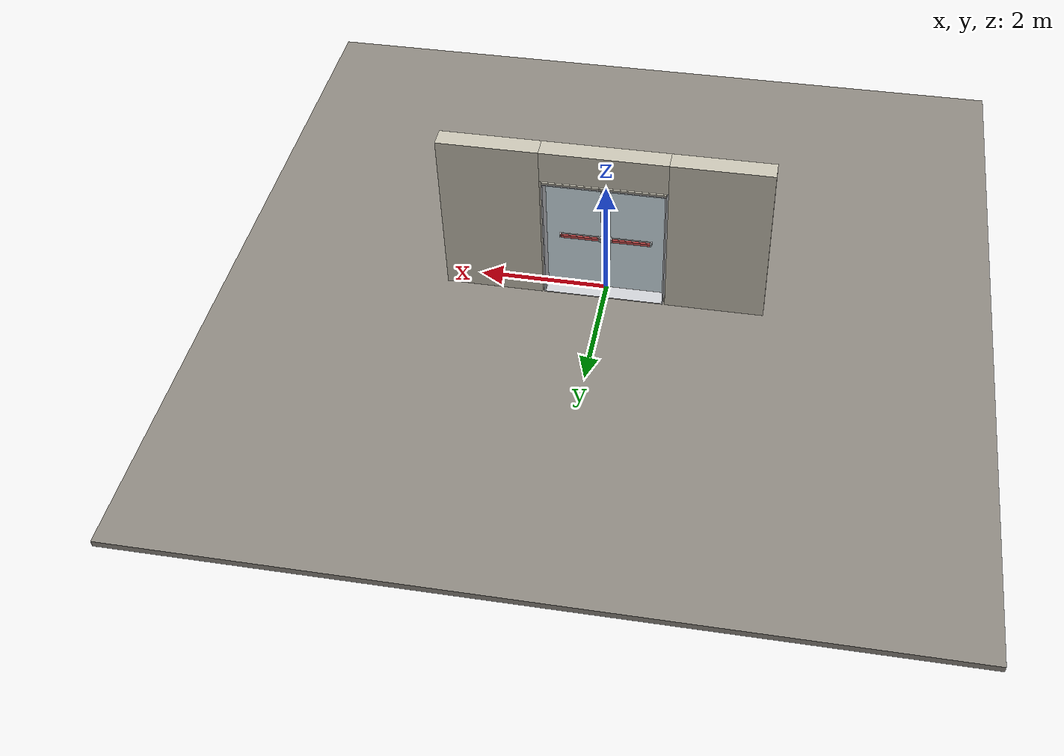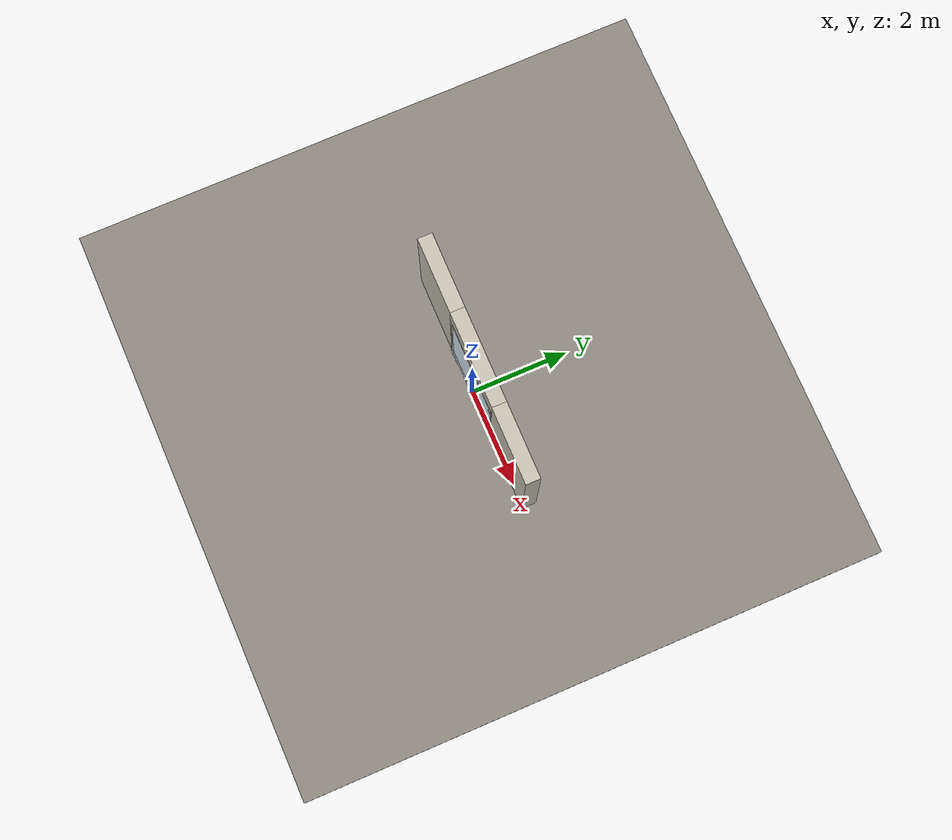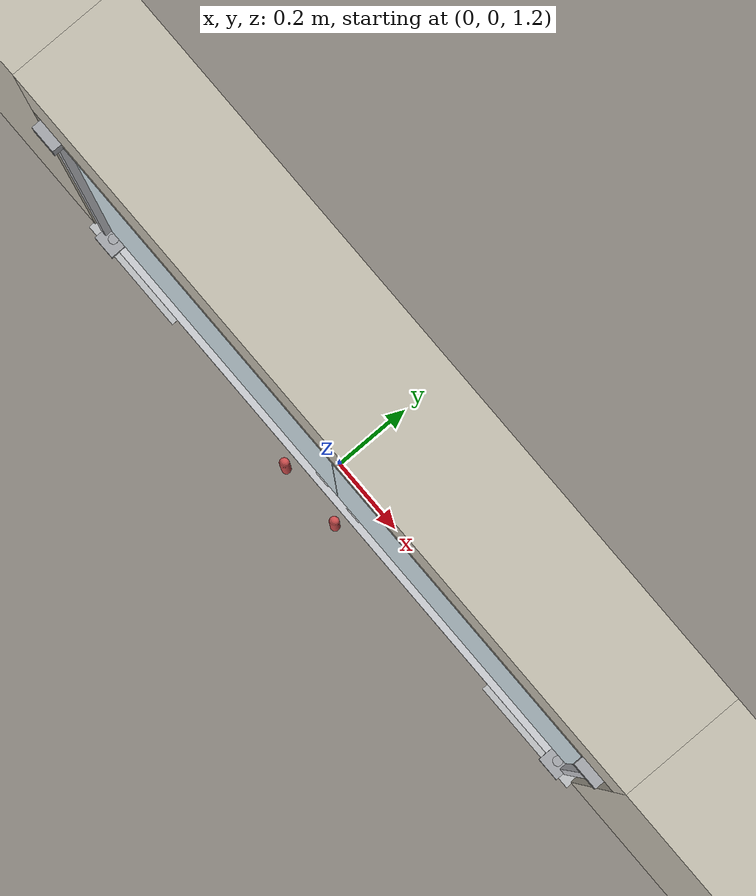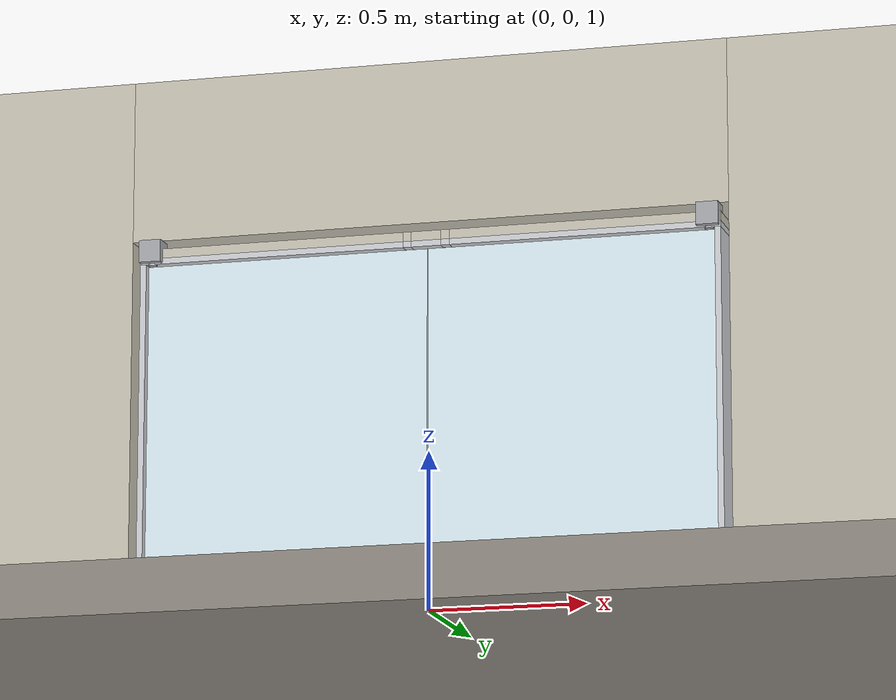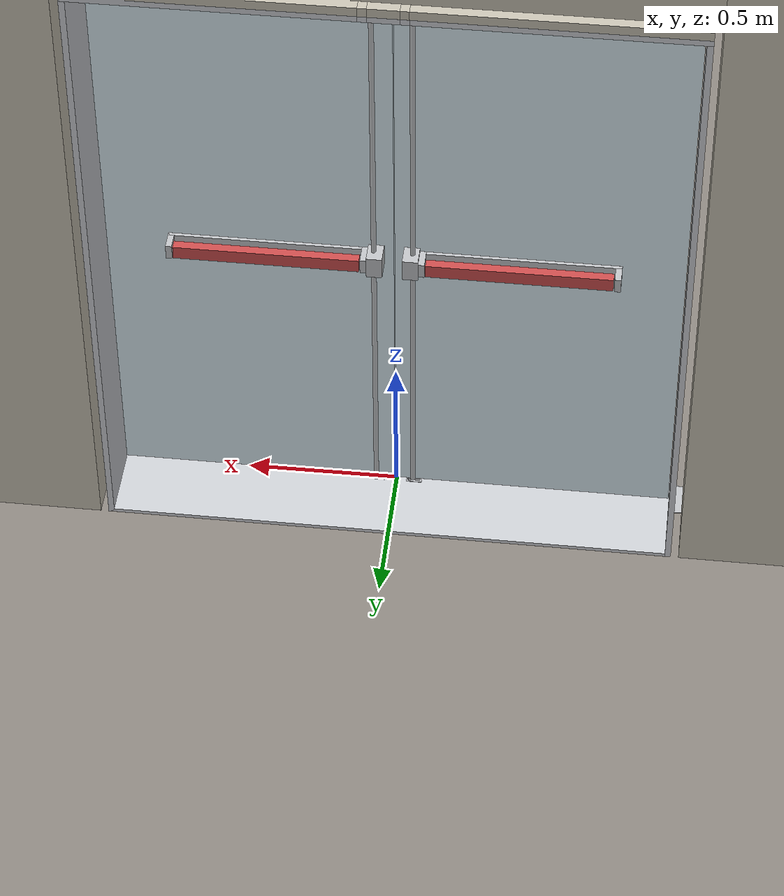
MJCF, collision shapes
<?xml version="1.0" ?>
<mujoco model="db0132_swing_double_full">
  <compiler angle="radian" meshdir="../../hardware" texturedir="../../textures" autolimits="true" inertiafromgeom="false"/>
  <option timestep="0.002" integrator="implicitfast" cone="elliptic" impratio="10" noslip_iterations="3">
    <flag multiccd="enable"/>
  </option>
  <size memory="16M"/>
  <default>
    <geom condim="4" solref="0.005 1" solimp="0.95 0.99 0.001"/>
    <joint solreflimit="0.005 1" solimplimit="0.95 0.99 0.001"/>
    <tendon solreflimit="0.005 1"/>
    <equality solref="0.002 1"/>
  </default>
  <visual>
    <headlight ambient="0.4 0.4 0.4" diffuse="0.7 0.7 0.7" specular="0.2 0.2 0.2"/>
    <quality shadowsize="4096"/>
    <map znear="0.01" zfar="60"/>
  </visual>
  <asset>
    <mesh name="pull_f8d79d6331" file="pull_f8d79d6331.obj"/>
    <mesh name="touchbar_pad_2729a067b4" file="touchbar_pad_2729a067b4.obj"/>
    <material name="mat_floor" rgba="0.55 0.53 0.5 1" specular="0.2" shininess="0.15" reflectance="0"/>
    <material name="mat_wall" rgba="0.78 0.76 0.7 1" specular="0.2" shininess="0.1" reflectance="0"/>
    <material name="mat_leaf_a" rgba="0.85 0.92 0.95 0.25" specular="0.2" shininess="0.95" reflectance="0.1"/>
    <material name="mat_glass_leaf" rgba="0.85 0.92 0.95 0.25" specular="0.2" shininess="0.95" reflectance="0.1"/>
    <material name="mat_patch" rgba="0.75 0.76 0.77 1" specular="0.8" shininess="0.65" reflectance="0.4"/>
    <material name="mat_hinge" rgba="0.65 0.66 0.68 1" specular="0.74" shininess="0.5" reflectance="0.36"/>
    <material name="mat_op_stainless" rgba="0.75 0.76 0.77 1" specular="0.8" shininess="0.65" reflectance="0.4"/>
    <material name="mat_bolt" rgba="0.75 0.76 0.77 1" specular="0.8" shininess="0.65" reflectance="0.4"/>
    <material name="mat_closer" rgba="0.75 0.76 0.77 1" specular="0.8" shininess="0.65" reflectance="0.4"/>
    <material name="mat_leaf_b" rgba="0.85 0.92 0.95 0.25" specular="0.2" shininess="0.95" reflectance="0.1"/>
    <material name="mat_frame" rgba="0.8 0.81 0.83 1" specular="0.8" shininess="0.6" reflectance="0.4"/>
    <material name="mat_threshold" rgba="0.8 0.81 0.83 1" specular="0.8" shininess="0.6" reflectance="0.4"/>
    <texture name="skybox" type="skybox" builtin="gradient" rgb1="0.6 0.7 0.85" rgb2="0.9 0.92 0.95" width="256" height="256"/>
  </asset>
  <worldbody>
    <light name="sun" pos="1.5 -2.5 4" dir="-0.3 0.5 -0.8" directional="true" diffuse="0.8 0.8 0.8" specular="0.3 0.3 0.3" castshadow="true"/>
    <light name="fill" pos="-1.5 2.5 3" dir="0.3 -0.5 -0.7" directional="true" diffuse="0.35 0.35 0.4" castshadow="false"/>
    <camera name="robot_view" pos="0 -2.530312 1.812087" xyaxes="1 0 0 0 0.26963 0.962964" fovy="52"/>
    <camera name="far_view" pos="0 2.745312 1.812087" xyaxes="-1 0 0 0 -0.26963 0.962964" fovy="52"/>
    <camera name="iso" pos="-2.004737 -2.108262 2.234138" xyaxes="0.741536 -0.670913 0 0.242917 0.268487 0.932151" fovy="46"/>
    <camera name="detail_handle" pos="0.0885 -0.8975 1.32" xyaxes="0.97561 0.219512 0 -0.070934 0.315262 0.94635" fovy="38"/>
    <geom name="floor" type="box" size="6 6 0.05" pos="0 0 -0.05" material="mat_floor" group="0" contype="1" conaffinity="1" friction="0.8 0.005 0.0001" density="2400"/>
    <geom name="wall_left" type="box" size="0.76825 0.15 1.3735" pos="-1.73175 0.1075 1.3735" material="mat_wall" group="0" contype="1" conaffinity="1" friction="0.6 0.005 0.0001" density="800"/>
    <geom name="wall_right" type="box" size="0.76825 0.15 1.3735" pos="1.73175 0.1075 1.3735" material="mat_wall" group="0" contype="1" conaffinity="1" friction="0.6 0.005 0.0001" density="800"/>
    <geom name="wall_header" type="box" size="0.9635 0.15 0.2625" pos="0 0.1075 2.4845" material="mat_wall" group="0" contype="1" conaffinity="1" friction="0.6 0.005 0.0001" density="800"/>
    <geom name="pivot_bottom_socket" type="box" size="0.035 0.035 0.0185" pos="-0.8995 -0.0325 0.0085" material="mat_hinge" group="1" contype="0" conaffinity="0" density="7850"/>
    <geom name="pivot_top_bracket" type="box" size="0.035 0.035 0.0355" pos="-0.8995 -0.0325 2.1865" material="mat_hinge" group="1" contype="0" conaffinity="0" density="7850"/>
    <geom name="leaf_a_bottom_strike_plate" type="box" size="0.0255 0.0255 0.00075" pos="-0.0615 0 0.01375" material="mat_bolt" group="0" contype="1" conaffinity="1" friction="0.6 0.005 0.0001" density="7850"/>
    <geom name="leaf_a_bottom_strike_p" type="box" size="0.0215 0.004 0.00575" pos="-0.0615 0.0145 0.02025" material="mat_bolt" group="0" contype="1" conaffinity="1" friction="0.6 0.005 0.0001" density="7850"/>
    <geom name="leaf_a_bottom_strike_n" type="box" size="0.0215 0.004 0.00575" pos="-0.0615 -0.0145 0.02025" material="mat_bolt" group="0" contype="1" conaffinity="1" friction="0.6 0.005 0.0001" density="7850"/>
    <geom name="leaf_a_bottom_strike_e" type="box" size="0.004 0.0215 0.00575" pos="-0.047 0 0.02025" material="mat_bolt" group="0" contype="1" conaffinity="1" friction="0.6 0.005 0.0001" density="7850"/>
    <geom name="floor_spring_cover" type="box" size="0.17 0.06 0.002" pos="-0.7985 0 0.002" material="mat_closer" group="1" contype="0" conaffinity="0" density="7900"/>
    <geom name="pivot_bottom_socket_2" type="box" size="0.035 0.035 0.0185" pos="0.8995 -0.0325 0.0085" material="mat_hinge" group="1" contype="0" conaffinity="0" density="7850"/>
    <geom name="pivot_top_bracket_2" type="box" size="0.035 0.035 0.0355" pos="0.8995 -0.0325 2.1865" material="mat_hinge" group="1" contype="0" conaffinity="0" density="7850"/>
    <geom name="leaf_b_bottom_strike_plate" type="box" size="0.0255 0.0255 0.00075" pos="0.0615 0 0.01375" material="mat_bolt" group="0" contype="1" conaffinity="1" friction="0.6 0.005 0.0001" density="7850"/>
    <geom name="leaf_b_bottom_strike_p" type="box" size="0.0215 0.004 0.00575" pos="0.0615 0.0145 0.02025" material="mat_bolt" group="0" contype="1" conaffinity="1" friction="0.6 0.005 0.0001" density="7850"/>
    <geom name="leaf_b_bottom_strike_n" type="box" size="0.0215 0.004 0.00575" pos="0.0615 -0.0145 0.02025" material="mat_bolt" group="0" contype="1" conaffinity="1" friction="0.6 0.005 0.0001" density="7850"/>
    <geom name="leaf_b_bottom_strike_e" type="box" size="0.004 0.0215 0.00575" pos="0.047 0 0.02025" material="mat_bolt" group="0" contype="1" conaffinity="1" friction="0.6 0.005 0.0001" density="7850"/>
    <geom name="floor_spring_cover_2" type="box" size="0.17 0.06 0.002" pos="0.7985 0 0.002" material="mat_closer" group="1" contype="0" conaffinity="0" density="7900"/>
    <geom name="jamb_l" type="box" size="0.0095 0.15 1.0735" pos="-0.928 0.1075 1.0735" material="mat_frame" group="0" contype="1" conaffinity="1" friction="0.6 0.005 0.0001" density="300"/>
    <geom name="jamb_r" type="box" size="0.0095 0.15 1.0735" pos="0.928 0.1075 1.0735" material="mat_frame" group="0" contype="1" conaffinity="1" friction="0.6 0.005 0.0001" density="300"/>
    <geom name="jamb_head_pwall_-61_n" type="box" size="0.0135 0.01575 0.0095" pos="-0.0615 -0.02675 2.1565" material="mat_frame" group="0" contype="1" conaffinity="1" friction="0.6 0.005 0.0001" density="300"/>
    <geom name="jamb_head_pwall_-61_p" type="box" size="0.0135 0.12325 0.0095" pos="-0.0615 0.13425 2.1565" material="mat_frame" group="0" contype="1" conaffinity="1" friction="0.6 0.005 0.0001" density="300"/>
    <geom name="jamb_head_pwall_61_n" type="box" size="0.0135 0.01575 0.0095" pos="0.0615 -0.02675 2.1565" material="mat_frame" group="0" contype="1" conaffinity="1" friction="0.6 0.005 0.0001" density="300"/>
    <geom name="jamb_head_pwall_61_p" type="box" size="0.0135 0.12325 0.0095" pos="0.0615 0.13425 2.1565" material="mat_frame" group="0" contype="1" conaffinity="1" friction="0.6 0.005 0.0001" density="300"/>
    <geom name="jamb_head_0" type="box" size="0.43125 0.15 0.0095" pos="-0.50625 0.1075 2.1565" material="mat_frame" group="0" contype="1" conaffinity="1" friction="0.6 0.005 0.0001" density="300"/>
    <geom name="jamb_head_1" type="box" size="0.048 0.15 0.0095" pos="0 0.1075 2.1565" material="mat_frame" group="0" contype="1" conaffinity="1" friction="0.6 0.005 0.0001" density="300"/>
    <geom name="jamb_head_2" type="box" size="0.43125 0.15 0.0095" pos="0.50625 0.1075 2.1565" material="mat_frame" group="0" contype="1" conaffinity="1" friction="0.6 0.005 0.0001" density="300"/>
    <geom name="head_stud_pwall_-61_n" type="box" size="0.0135 0.01575 0.015" pos="-0.0615 -0.02675 2.181" material="mat_wall" group="0" contype="1" conaffinity="1" friction="0.6 0.005 0.0001" density="500"/>
    <geom name="head_stud_pwall_-61_p" type="box" size="0.0135 0.12325 0.015" pos="-0.0615 0.13425 2.181" material="mat_wall" group="0" contype="1" conaffinity="1" friction="0.6 0.005 0.0001" density="500"/>
    <geom name="head_stud_pback_-61" type="box" size="0.0135 0.011 0.013" pos="-0.0615 0 2.183" material="mat_wall" group="0" contype="1" conaffinity="1" friction="0.6 0.005 0.0001" density="500"/>
    <geom name="head_stud_pwall_61_n" type="box" size="0.0135 0.01575 0.015" pos="0.0615 -0.02675 2.181" material="mat_wall" group="0" contype="1" conaffinity="1" friction="0.6 0.005 0.0001" density="500"/>
    <geom name="head_stud_pwall_61_p" type="box" size="0.0135 0.12325 0.015" pos="0.0615 0.13425 2.181" material="mat_wall" group="0" contype="1" conaffinity="1" friction="0.6 0.005 0.0001" density="500"/>
    <geom name="head_stud_pback_61" type="box" size="0.0135 0.011 0.013" pos="0.0615 0 2.183" material="mat_wall" group="0" contype="1" conaffinity="1" friction="0.6 0.005 0.0001" density="500"/>
    <geom name="head_stud_0" type="box" size="0.43125 0.15 0.015" pos="-0.50625 0.1075 2.181" material="mat_wall" group="0" contype="1" conaffinity="1" friction="0.6 0.005 0.0001" density="500"/>
    <geom name="head_stud_1" type="box" size="0.048 0.15 0.015" pos="0 0.1075 2.181" material="mat_wall" group="0" contype="1" conaffinity="1" friction="0.6 0.005 0.0001" density="500"/>
    <geom name="head_stud_2" type="box" size="0.43125 0.15 0.015" pos="0.50625 0.1075 2.181" material="mat_wall" group="0" contype="1" conaffinity="1" friction="0.6 0.005 0.0001" density="500"/>
    <geom name="threshold" type="box" size="0.9375 0.15 0.0065" pos="0 0.1075 0.0065" material="mat_threshold" group="0" contype="1" conaffinity="1" friction="0.5 0.005 0.0001" density="2700"/>
    <site name="approach_point" pos="0 -1.5 0" quat="1 0 0 0" size="0.05" rgba="0.2 0.9 0.2 0.5" group="4"/>
    <site name="goal_point" pos="0 1.5 0" quat="1 0 0 0" size="0.05" rgba="0.2 0.9 0.2 0.5" group="4"/>
    <site name="door_plane_center" pos="0 0 1.0735" quat="1 0 0 0" size="0.02" rgba="0.2 0.9 0.2 0.5" group="4"/>
    <site name="approach_point_2" pos="0 -1.5 0" quat="1 0 0 0" size="0.05" rgba="0.2 0.9 0.2 0.5" group="4"/>
    <site name="goal_point_2" pos="0 1.5 0" quat="1 0 0 0" size="0.05" rgba="0.2 0.9 0.2 0.5" group="4"/>
    <site name="door_plane_center_2" pos="0 0 1.0735" quat="1 0 0 0" size="0.02" rgba="0.2 0.9 0.2 0.5" group="4"/>
    <site name="approach_point_3" pos="0 -1.5 0" quat="1 0 0 0" size="0.05" rgba="0.2 0.9 0.2 0.5" group="4"/>
    <site name="goal_point_3" pos="0 1.5 0" quat="1 0 0 0" size="0.05" rgba="0.2 0.9 0.2 0.5" group="4"/>
    <site name="door_plane_center_3" pos="0 0 1.0735" quat="1 0 0 0" size="0.02" rgba="0.2 0.9 0.2 0.5" group="4"/>
    <body name="leaf_a" pos="-0.9185 0 0">
      <inertial pos="0.484745 0.001904 1.084125" mass="97.32704" quat="0.497777 0.501525 -0.498453 0.502231" diaginertia="7.237899942 34.820189256 41.97413869"/>
      <joint name="leaf_a_hinge" type="hinge" axis="0 0 -1" pos="0.019 -0.0325 0" limited="true" range="0 1.570796" solreflimit="0.02 1" damping="8.268966" frictionloss="1.468834" stiffness="35.383327" springref="-1.648234" armature="0.02"/>
      <geom name="leaf_a_glass" type="box" size="0.457 0.0225 1.057" pos="0.46 0 1.086" material="mat_glass_leaf" group="0" contype="1" conaffinity="1" friction="0.4 0.005 0.0001" density="1"/>
      <geom name="pivot_bottom" type="cylinder" size="0.014 0.004" pos="0.019 -0.0325 0.024" material="mat_hinge" group="1" contype="0" conaffinity="0" density="7850"/>
      <geom name="pivot_top" type="cylinder" size="0.014 0.004" pos="0.019 -0.0325 2.147" material="mat_hinge" group="1" contype="0" conaffinity="0" density="7850"/>
      <geom name="leaf_a_exit_device_rail" type="box" size="0.31705 0.006 0.025" pos="0.51995 0.0285 1.04" material="mat_op_stainless" group="0" contype="1" conaffinity="1" friction="0.6 0.005 0.0001" density="3000"/>
      <geom name="leaf_a_exit_device_rail_end_n" type="box" size="0.01 0.0325 0.025" pos="0.2129 0.055 1.04" material="mat_op_stainless" group="0" contype="1" conaffinity="1" friction="0.6 0.005 0.0001" density="3000"/>
      <geom name="leaf_a_exit_device_rail_end_p" type="box" size="0.01 0.0325 0.025" pos="0.827 0.055 1.04" material="mat_op_stainless" group="0" contype="1" conaffinity="1" friction="0.6 0.005 0.0001" density="3000"/>
      <geom name="leaf_a_exit_device_case" type="box" size="0.025 0.034125 0.0375" pos="0.862 0.056625 1.04" material="mat_op_stainless" group="0" contype="1" conaffinity="1" friction="0.6 0.005 0.0001" density="3000"/>
      <geom name="leaf_a_exit_device_rod_top" type="cylinder" size="0.008 0.51775" pos="0.857 0.0525 1.59525" material="mat_op_stainless" group="1" contype="0" conaffinity="0" density="7850"/>
      <geom name="leaf_a_exit_device_rod_bot" type="cylinder" size="0.008 0.47175" pos="0.857 0.0525 0.53075" material="mat_op_stainless" group="1" contype="0" conaffinity="0" density="7850"/>
      <geom name="leaf_a_far_pull_n" type="mesh" mesh="pull_f8d79d6331" pos="0.827 -0.0225 1.04" quat="0.707107 0.707107 0 0" material="mat_op_stainless" group="1" contype="0" conaffinity="0" density="3000"/>
      <geom name="leaf_a_far_pull_col_n" type="capsule" size="0.0125 0.13" pos="0.827 -0.0975 1.04" material="mat_op_stainless" group="3" contype="1" conaffinity="1" rgba="0.8 0.3 0.3 0.25" friction="0.7 0.01 0.0001" density="3000"/>
      <site name="leaf_a_far_pull_grip_n" pos="0.827 -0.0975 1.04" quat="1 0 0 0" size="0.012" rgba="0.2 0.9 0.2 0.5" group="4"/>
      <site name="leaf_a_edge_mid" pos="0.917 0 1.057" quat="1 0 0 0" size="0.02" rgba="0.2 0.9 0.2 0.5" group="4"/>
      <body name="leaf_a_exit_device" pos="0.51995 0.0225 1.04">
        <inertial pos="0 0.05 0" mass="4.76361" quat="0 0 0.707107 0.707107" diaginertia="0.00116113 0.137653089 0.138099678"/>
        <joint name="leaf_a_exit_device_slide" type="slide" axis="0 -1 0" limited="true" range="0 0.016" damping="165.880125" frictionloss="0.5" stiffness="1400" springref="-0.015714" armature="0.15"/>
        <geom name="leaf_a_exit_device_pad" type="mesh" mesh="touchbar_pad_2729a067b4" pos="0 0 0" quat="-0.707107 0.707107 0 0" material="mat_op_stainless" group="1" contype="0" conaffinity="0" density="3000"/>
        <geom name="leaf_a_exit_device_pad_col" type="box" size="0.29405 0.015 0.0225" pos="0 0.05 0" material="mat_op_stainless" group="3" contype="1" conaffinity="1" rgba="0.8 0.3 0.3 0.25" friction="0.8 0.01 0.0001" density="3000"/>
        <site name="leaf_a_exit_device_push" pos="0 0.065 0" quat="1 0 0 0" size="0.015" rgba="0.2 0.9 0.2 0.5" group="4"/>
      </body>
      <body name="leaf_a_top_latch" pos="0.857 0 2.143">
        <inertial pos="0 0 -0.0155" mass="0.151026" quat="0.707107 0 0.707107 0" diaginertia="0.00000654 0.000053442 0.000053442"/>
        <joint name="leaf_a_top_latch_slide" type="slide" axis="0 0 -1" limited="true" range="0 0.019" damping="2" frictionloss="0.3" stiffness="800" springref="-0.01" armature="0.1"/>
        <geom name="leaf_a_top_latch_capsule" type="capsule" size="0.0095 0.025" pos="0 0 -0.0155" material="mat_bolt" group="0" contype="1" conaffinity="1" friction="0.2 0.005 0.0001" density="8500"/>
      </body>
      <body name="leaf_a_bottom_latch" pos="0.857 0 0.03">
        <inertial pos="0 0 0.0185" mass="0.136566" quat="0.707107 0 0.707107 0" diaginertia="0.000005887 0.000040162 0.000040162"/>
        <joint name="leaf_a_bottom_latch_slide" type="slide" axis="0 0 1" limited="true" range="0 0.013" damping="2" frictionloss="0.3" stiffness="800" springref="-0.01" armature="0.1"/>
        <geom name="leaf_a_bottom_latch_capsule" type="capsule" size="0.0095 0.022" pos="0 0 0.0185" material="mat_bolt" group="0" contype="1" conaffinity="1" friction="0.2 0.005 0.0001" density="8500"/>
      </body>
    </body>
    <body name="leaf_b" pos="0.9185 0 0">
      <inertial pos="-0.484745 0.001904 1.084125" mass="97.32704" quat="0.502231 0.498453 -0.501525 0.497777" diaginertia="7.237899942 34.820189256 41.97413869"/>
      <joint name="leaf_b_hinge" type="hinge" axis="0 0 1" pos="-0.019 -0.0325 0" limited="true" range="0 1.570796" solreflimit="0.02 1" damping="8.268966" frictionloss="1.468834" stiffness="35.383327" springref="-1.648234" armature="0.02"/>
      <geom name="leaf_b_glass" type="box" size="0.457 0.0225 1.057" pos="-0.46 0 1.086" material="mat_glass_leaf" group="0" contype="1" conaffinity="1" friction="0.4 0.005 0.0001" density="1"/>
      <geom name="pivot_bottom_2" type="cylinder" size="0.014 0.004" pos="-0.019 -0.0325 0.024" material="mat_hinge" group="1" contype="0" conaffinity="0" density="7850"/>
      <geom name="pivot_top_2" type="cylinder" size="0.014 0.004" pos="-0.019 -0.0325 2.147" material="mat_hinge" group="1" contype="0" conaffinity="0" density="7850"/>
      <geom name="leaf_b_exit_device_rail" type="box" size="0.31705 0.006 0.025" pos="-0.51995 0.0285 1.04" material="mat_op_stainless" group="0" contype="1" conaffinity="1" friction="0.6 0.005 0.0001" density="3000"/>
      <geom name="leaf_b_exit_device_rail_end_n" type="box" size="0.01 0.0325 0.025" pos="-0.827 0.055 1.04" material="mat_op_stainless" group="0" contype="1" conaffinity="1" friction="0.6 0.005 0.0001" density="3000"/>
      <geom name="leaf_b_exit_device_rail_end_p" type="box" size="0.01 0.0325 0.025" pos="-0.2129 0.055 1.04" material="mat_op_stainless" group="0" contype="1" conaffinity="1" friction="0.6 0.005 0.0001" density="3000"/>
      <geom name="leaf_b_exit_device_case" type="box" size="0.025 0.034125 0.0375" pos="-0.862 0.056625 1.04" material="mat_op_stainless" group="0" contype="1" conaffinity="1" friction="0.6 0.005 0.0001" density="3000"/>
      <geom name="leaf_b_exit_device_rod_top" type="cylinder" size="0.008 0.51775" pos="-0.857 0.0525 1.59525" material="mat_op_stainless" group="1" contype="0" conaffinity="0" density="7850"/>
      <geom name="leaf_b_exit_device_rod_bot" type="cylinder" size="0.008 0.47175" pos="-0.857 0.0525 0.53075" material="mat_op_stainless" group="1" contype="0" conaffinity="0" density="7850"/>
      <geom name="leaf_b_far_pull_n" type="mesh" mesh="pull_f8d79d6331" pos="-0.827 -0.0225 1.04" quat="0 0 -0.707107 0.707107" material="mat_op_stainless" group="1" contype="0" conaffinity="0" density="3000"/>
      <geom name="leaf_b_far_pull_col_n" type="capsule" size="0.0125 0.13" pos="-0.827 -0.0975 1.04" material="mat_op_stainless" group="3" contype="1" conaffinity="1" rgba="0.8 0.3 0.3 0.25" friction="0.7 0.01 0.0001" density="3000"/>
      <site name="leaf_b_far_pull_grip_n" pos="-0.827 -0.0975 1.04" quat="1 0 0 0" size="0.012" rgba="0.2 0.9 0.2 0.5" group="4"/>
      <site name="leaf_b_edge_mid" pos="-0.917 0 1.057" quat="1 0 0 0" size="0.02" rgba="0.2 0.9 0.2 0.5" group="4"/>
      <body name="leaf_b_exit_device" pos="-0.51995 0.0225 1.04">
        <inertial pos="0 0.05 0" mass="4.76361" quat="0 0 0.707107 0.707107" diaginertia="0.00116113 0.137653089 0.138099678"/>
        <joint name="leaf_b_exit_device_slide" type="slide" axis="0 -1 0" limited="true" range="0 0.016" damping="165.880125" frictionloss="0.5" stiffness="1400" springref="-0.015714" armature="0.15"/>
        <geom name="leaf_b_exit_device_pad" type="mesh" mesh="touchbar_pad_2729a067b4" pos="0 0 0" quat="0 0 0.707107 0.707107" material="mat_op_stainless" group="1" contype="0" conaffinity="0" density="3000"/>
        <geom name="leaf_b_exit_device_pad_col" type="box" size="0.29405 0.015 0.0225" pos="0 0.05 0" material="mat_op_stainless" group="3" contype="1" conaffinity="1" rgba="0.8 0.3 0.3 0.25" friction="0.8 0.01 0.0001" density="3000"/>
        <site name="leaf_b_exit_device_push" pos="0 0.065 0" quat="1 0 0 0" size="0.015" rgba="0.2 0.9 0.2 0.5" group="4"/>
      </body>
      <body name="leaf_b_top_latch" pos="-0.857 0 2.143">
        <inertial pos="0 0 -0.0155" mass="0.151026" quat="0.707107 0 0.707107 0" diaginertia="0.00000654 0.000053442 0.000053442"/>
        <joint name="leaf_b_top_latch_slide" type="slide" axis="0 0 -1" limited="true" range="0 0.019" damping="2" frictionloss="0.3" stiffness="800" springref="-0.01" armature="0.1"/>
        <geom name="leaf_b_top_latch_capsule" type="capsule" size="0.0095 0.025" pos="0 0 -0.0155" material="mat_bolt" group="0" contype="1" conaffinity="1" friction="0.2 0.005 0.0001" density="8500"/>
      </body>
      <body name="leaf_b_bottom_latch" pos="-0.857 0 0.03">
        <inertial pos="0 0 0.0185" mass="0.136566" quat="0.707107 0 0.707107 0" diaginertia="0.000005887 0.000040162 0.000040162"/>
        <joint name="leaf_b_bottom_latch_slide" type="slide" axis="0 0 1" limited="true" range="0 0.013" damping="2" frictionloss="0.3" stiffness="800" springref="-0.01" armature="0.1"/>
        <geom name="leaf_b_bottom_latch_capsule" type="capsule" size="0.0095 0.022" pos="0 0 0.0185" material="mat_bolt" group="0" contype="1" conaffinity="1" friction="0.2 0.005 0.0001" density="8500"/>
      </body>
    </body>
  </worldbody>
  <tendon>
    <fixed name="leaf_a_top_latch_coupling" limited="true" range="0 10">
      <joint joint="leaf_a_top_latch_slide" coef="1"/>
      <joint joint="leaf_a_exit_device_slide" coef="-1.142857"/>
    </fixed>
    <fixed name="leaf_a_bottom_latch_coupling" limited="true" range="0 10">
      <joint joint="leaf_a_bottom_latch_slide" coef="1"/>
      <joint joint="leaf_a_exit_device_slide" coef="-0.781955"/>
    </fixed>
    <fixed name="leaf_b_top_latch_coupling" limited="true" range="0 10">
      <joint joint="leaf_b_top_latch_slide" coef="1"/>
      <joint joint="leaf_b_exit_device_slide" coef="-1.142857"/>
    </fixed>
    <fixed name="leaf_b_bottom_latch_coupling" limited="true" range="0 10">
      <joint joint="leaf_b_bottom_latch_slide" coef="1"/>
      <joint joint="leaf_b_exit_device_slide" coef="-0.781955"/>
    </fixed>
  </tendon>
  <sensor>
    <jointpos name="leaf_a_hinge_pos" joint="leaf_a_hinge"/>
    <jointvel name="leaf_a_hinge_vel" joint="leaf_a_hinge"/>
    <jointpos name="leaf_a_exit_device_slide_pos" joint="leaf_a_exit_device_slide"/>
    <jointvel name="leaf_a_exit_device_slide_vel" joint="leaf_a_exit_device_slide"/>
    <jointpos name="leaf_a_top_latch_slide_pos" joint="leaf_a_top_latch_slide"/>
    <jointvel name="leaf_a_top_latch_slide_vel" joint="leaf_a_top_latch_slide"/>
    <jointpos name="leaf_a_bottom_latch_slide_pos" joint="leaf_a_bottom_latch_slide"/>
    <jointvel name="leaf_a_bottom_latch_slide_vel" joint="leaf_a_bottom_latch_slide"/>
    <jointpos name="leaf_b_hinge_pos" joint="leaf_b_hinge"/>
    <jointvel name="leaf_b_hinge_vel" joint="leaf_b_hinge"/>
    <jointpos name="leaf_b_exit_device_slide_pos" joint="leaf_b_exit_device_slide"/>
    <jointvel name="leaf_b_exit_device_slide_vel" joint="leaf_b_exit_device_slide"/>
    <jointpos name="leaf_b_top_latch_slide_pos" joint="leaf_b_top_latch_slide"/>
    <jointvel name="leaf_b_top_latch_slide_vel" joint="leaf_b_top_latch_slide"/>
    <jointpos name="leaf_b_bottom_latch_slide_pos" joint="leaf_b_bottom_latch_slide"/>
    <jointvel name="leaf_b_bottom_latch_slide_vel" joint="leaf_b_bottom_latch_slide"/>
  </sensor>
</mujoco>
